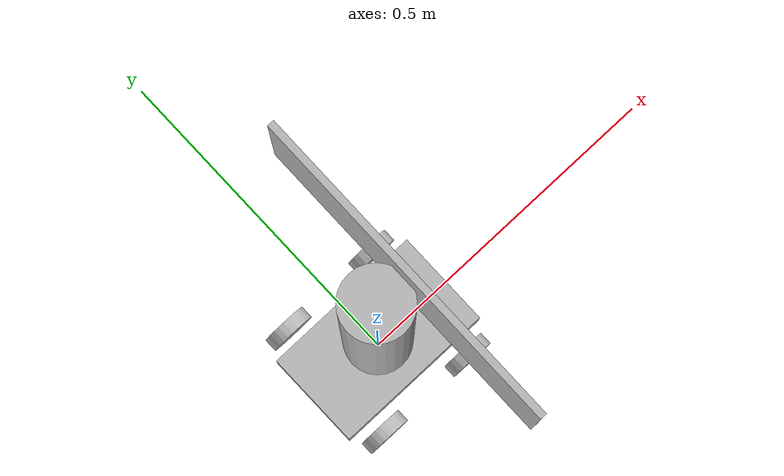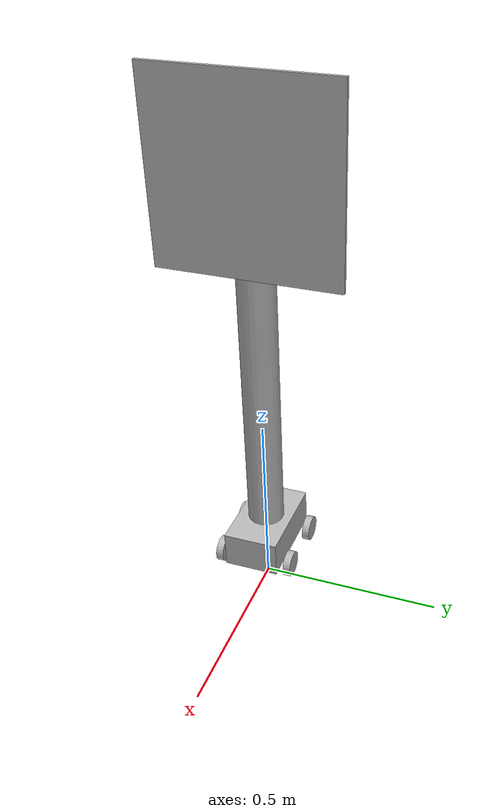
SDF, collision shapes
<?xml version="1.0" ?>
<sdf version="1.5">
  <model name="wheeltec_aruco_forward">

    <include>
      <uri>model://wheeltec</uri>
    </include>

    <link name='tag'>
      <pose frame=''> 0.05 0.0 1.2 0 1.57 3.14</pose>
      <inertial>
        <pose>0 0 0 0 0 0</pose>
        <mass>0.1</mass>
        <inertia>
          <ixx>0</ixx>
          <ixy>0</ixy>
          <ixz>0</ixz>
          <iyy>0</iyy>
          <iyz>0</iyz>
          <izz>0</izz>
        </inertia>
      </inertial>
      <collision name="platform_collision">
        <geometry>
          <box>
            <size>0.48 0.48 0.01</size>
          </box>
        </geometry>
        <surface>
          <friction>
            <ode>
              <mu>1.0</mu>
              <mu2>1.0</mu2>
            </ode>
          </friction>
        </surface>
      </collision>
      <visual name="visual">
        <cast_shadows>false</cast_shadows>
        <geometry>
          <box>
            <size>0.48 0.48 0.01</size>
          </box>
        </geometry>
        <material>
          <script>
            <uri>model://single_aruco/single_aruco.material</uri>
            <name>aruco_92</name>
          </script>
        </material>
      </visual>
    </link>

    <link name='cylinder_link'>
    <pose frame=''> 0.0 0.0 0.70 0.0 0.0 0.0</pose>
      <inertial>
        <mass>1</mass>
        <inertia>
          <ixx>0.0</ixx>
          <ixy>0</ixy>
          <ixz>0</ixz>
          <iyy>0.0</iyy>
          <iyz>0</iyz>
          <izz>0.0</izz>
        </inertia>
      </inertial>
      <collision name='collision'>
        <geometry>
          <cylinder>
            <radius>0.05</radius>
            <length>1.2</length>
          </cylinder>
        </geometry>
        <max_contacts>10</max_contacts>
        <surface>
          <contact>
            <collide_without_contact>1</collide_without_contact>
            <ode/>
          </contact>
          <bounce/>
          <friction>
            <torsional>
              <ode/>
            </torsional>
            <ode/>
          </friction>
        </surface>
      </collision>
      <visual name='visual'>
        <geometry>
          <cylinder>
            <radius>0.05</radius>
            <length>1.2</length>
          </cylinder>
        </geometry>
      </visual>
      <self_collide>0</self_collide>
      <kinematic>0</kinematic>
      <gravity>0</gravity>
      <enable_wind>0</enable_wind>
    </link>

    <joint name='tag_link' type='fixed'>
      <pose>0 0 0 0 0 0</pose>
      <child>tag</child>
      <parent>cylinder_link</parent>
    </joint>

    <joint name='cylinder_link' type='fixed'>
      <pose>0 0 0 0 -0 0</pose>
      <child>cylinder_link</child>
      <parent>wheeltec::base_link</parent>
    </joint>

    </model>
</sdf>

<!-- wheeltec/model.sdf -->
<sdf version="1.5">
  <model name="wheeltec">
    <link name="base_link">
      <pose>0 0 0.16 0 0 0</pose>
      <inertial>
        <mass>2</mass>
        <inertia>
          <ixx>0.028819942</ixx>
          <iyy>0.047333716</iyy>
          <izz>0.054201740</izz>
          <ixy>0</ixy>
          <ixz>0</ixz>
          <iyz>0</iyz>
        </inertia>
      </inertial>
      <collision name="collision">
        <pose>0 0 0 0 0 0</pose>
        <geometry>
          <box>
            <size>0.25 0.15 0.1</size>
          </box>
        </geometry>
      </collision>
      <visual name="visual">
        <pose>0.045 0 -0.05 1.57 0 0</pose>
        <geometry>
          <mesh>
            <uri>model://wheeltec/meshes/body.dae</uri>
          </mesh>
        </geometry>
      </visual>
    </link>

    <link name="right_front_wheel">
      <pose>0.08 -0.1 0.12 1.57 0 0</pose>
      <inertial>
        <mass>0.3844</mass>
        <inertia>
          <ixx>0.000480000</ixx>
          <iyy>0.000480000</iyy>
          <izz>0.000480000</izz>
          <ixy>0</ixy>
          <ixz>0</ixz>
          <iyz>0</iyz>
        </inertia>
      </inertial>
      <collision name='right_front_wheel_collision'>
        <pose>0 0 0 0 0 0</pose>
        <geometry>
          <cylinder>
            <length>0.02</length>
            <radius>0.035</radius>
          </cylinder>
        </geometry>
        <surface>
          <friction>
            <ode>
              <mu>0.5</mu>
              <mu2>0.3</mu2>
              <slip1>0.0</slip1>
              <slip2>0.0</slip2>
            </ode>
          </friction>
          <contact>
            <ode>
              <min_depth>0.001</min_depth>
            </ode>
          </contact>
        </surface>
      </collision>
      <visual name="visual">
        <pose>-0.035 0.015 -0.1 3.14 0 0</pose>
        <geometry>
          <mesh>
            <uri>model://wheeltec/meshes/front.dae</uri>
          </mesh>
        </geometry>
      </visual>
    </link>

    <link name="right_after_wheel">
      <pose>-0.08 -0.1 0.12 1.57 0 0</pose>
      <inertial>
        <mass>0.3844</mass>
        <inertia>
          <ixx>0.000480000</ixx>
          <iyy>0.000480000</iyy>
          <izz>0.000480000</izz>
          <ixy>0</ixy>
          <ixz>0</ixz>
          <iyz>0</iyz>
        </inertia>
      </inertial>
      <collision name='right_after_wheel_collision'>
        <pose>0 0 0 0 0 0</pose>
        <geometry>
          <cylinder>
            <length>0.02</length>
            <radius>0.035</radius>
          </cylinder>
        </geometry>
        <surface>
          <friction>
            <ode>
              <mu>0.5</mu>
              <mu2>0.3</mu2>
              <slip1>0.0</slip1>
              <slip2>0.0</slip2>
            </ode>
          </friction>
          <contact>
            <ode>
              <min_depth>0.001</min_depth>
            </ode>
          </contact>
        </surface>
      </collision>
      <visual name="visual">
        <pose>-0.035 0.015 -0.1 3.14 0 0</pose>
        <geometry>
          <mesh>
            <uri>model://wheeltec/meshes/front.dae</uri>
          </mesh>
        </geometry>
      </visual>
    </link>

    <link name="left_front_wheel">
      <pose>0.08 0.1 0.12 1.57 0 0</pose>
      <inertial>
        <mass>0.3844</mass>
        <inertia>
          <ixx>0.000480000</ixx>
          <iyy>0.000480000</iyy>
          <izz>0.000480000</izz>
          <ixy>0</ixy>
          <ixz>0</ixz>
          <iyz>0</iyz>
        </inertia>
      </inertial>
      <collision name='left_front_wheel_collision'>
        <pose>0 0 0 0 0 0</pose>
        <geometry>
          <cylinder>
            <length>0.02</length>
            <radius>0.035</radius>
          </cylinder>
        </geometry>
        <surface>
          <friction>
            <ode>
              <mu>0.5</mu>
              <mu2>0.3</mu2>
              <slip1>0.0</slip1>
              <slip2>0.0</slip2>
            </ode>
          </friction>
          <contact>
            <ode>
              <min_depth>0.001</min_depth>
            </ode>
          </contact>
        </surface>
      </collision>
      <visual name="visual">
        <pose>-0.035 -0.015 0.1 0 0 0</pose>
        <geometry>
          <mesh>
            <uri>model://wheeltec/meshes/front.dae</uri>
          </mesh>
        </geometry>
      </visual>
    </link>

    <link name="left_after_wheel">
      <pose>-0.08 0.1 0.12 1.57 0 0</pose>
      <inertial>
        <mass>0.3844</mass>
        <inertia>
          <ixx>0.000480000</ixx>
          <iyy>0.000480000</iyy>
          <izz>0.000480000</izz>
          <ixy>0</ixy>
          <ixz>0</ixz>
          <iyz>0</iyz>
        </inertia>
      </inertial>
      <collision name='left_after_wheel_collision'>
        <pose>0 0 0 0 0 0</pose>
        <geometry>
          <cylinder>
            <length>0.02</length>
            <radius>0.035</radius>
          </cylinder>
        </geometry>
        <surface>
          <friction>
            <ode>
              <mu>0.5</mu>
              <mu2>0.3</mu2>
              <slip1>0.0</slip1>
              <slip2>0.0</slip2>
            </ode>
          </friction>
          <contact>
            <ode>
              <min_depth>0.001</min_depth>
            </ode>
          </contact>
        </surface>
      </collision>
      <visual name="visual">
        <pose>-0.035 -0.015 0.1 0 0 0</pose>
        <geometry>
          <mesh>
            <uri>model://wheeltec/meshes/front.dae</uri>
          </mesh>
        </geometry>
      </visual>
    </link>

    <joint type="revolute" name="right_front_wheel_joint">
      <child>right_front_wheel</child>
      <parent>base_link</parent>
      <axis>
        <xyz>0 1 0</xyz>
        <limit>
          <lower>-1e+16</lower>
          <upper>1e+16</upper>
        </limit>
        <dynamics>
          <spring_reference>0</spring_reference>
          <spring_stiffness>0</spring_stiffness>
        </dynamics>
        <use_parent_model_frame>1</use_parent_model_frame>
      </axis>
    </joint>

    <joint type="revolute" name="right_after_wheel_joint">
      <child>right_after_wheel</child>
      <parent>base_link</parent>
      <axis>
        <xyz>0 1 0</xyz>
        <limit>
          <lower>-1e+16</lower>
          <upper>1e+16</upper>
        </limit>
        <dynamics>
          <spring_reference>0</spring_reference>
          <spring_stiffness>0</spring_stiffness>
        </dynamics>
        <use_parent_model_frame>1</use_parent_model_frame>
      </axis>
    </joint>

    <joint type="revolute" name="left_front_wheel_joint">
      <child>left_front_wheel</child>
      <parent>base_link</parent>
      <axis>
        <xyz>0 1 0</xyz>
        <limit>
          <lower>-1e+16</lower>
          <upper>1e+16</upper>
        </limit>
        <dynamics>
          <spring_reference>0</spring_reference>
          <spring_stiffness>0</spring_stiffness>
        </dynamics>
        <use_parent_model_frame>1</use_parent_model_frame>
      </axis>
    </joint>

    <joint type="revolute" name="left_after_wheel_joint">
      <child>left_after_wheel</child>
      <parent>base_link</parent>
      <axis>
        <xyz>0 1 0</xyz>
        <limit>
          <lower>-1e+16</lower>
          <upper>1e+16</upper>
        </limit>
        <dynamics>
          <spring_reference>0</spring_reference>
          <spring_stiffness>0</spring_stiffness>
        </dynamics>
        <use_parent_model_frame>1</use_parent_model_frame>
      </axis>
    </joint>

    <plugin name="mecanum_controller" filename="libgazebo_ros_planar_move.so">
            <updateRate>100.0</updateRate>
            <cmdTimeout>0.01</cmdTimeout>
            <leftFrontJoint>left_front_wheel_joint</leftFrontJoint>
            <rightFrontJoint>right_front_wheel_joint</rightFrontJoint>
            <leftRearJoint>left_after_wheel_joint</leftRearJoint>
            <rightRearJoint>right_after_wheel_joint</rightRearJoint>
            <wheelSeparation>0.1</wheelSeparation>
            <wheelDiameter>0.07</wheelDiameter>
            <torque>2</torque>
            <commandTopic>cmd_vel</commandTopic>
            <odometryFrame>world</odometryFrame>
            <odometryTopic>odom</odometryTopic>
            <robotBaseFrame>base_link</robotBaseFrame>
            <broadcastTF>0</broadcastTF>
            <publishTf>0</publishTf>
            <publishWheelJointState>true</publishWheelJointState>
            <alwaysOn>true</alwaysOn>
        </plugin>

  </model>
</sdf>
